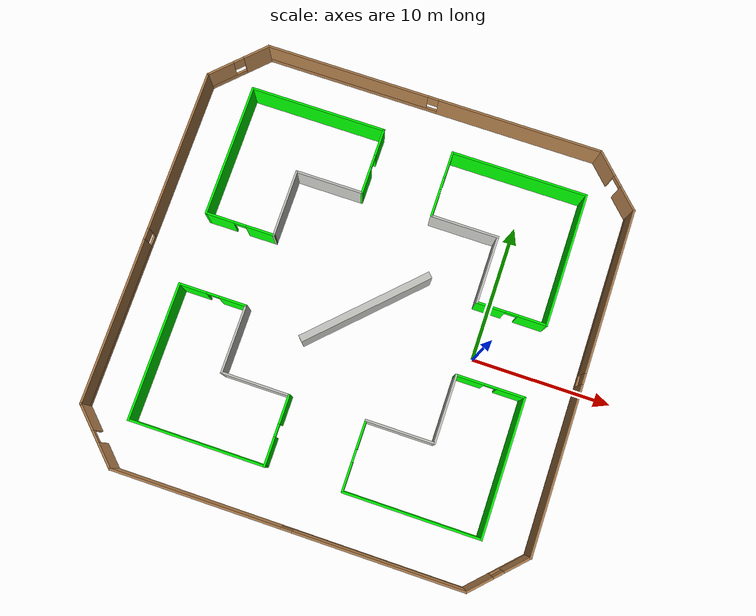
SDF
<?xml version='1.0'?>
<sdf version='1.6'>
  <model name='slash'>
    <pose frame=''>-8.48991 0.791123 0 0 -0 0</pose>
    <link name='Wall_12'>
      <pose frame=''>-14.1397 14.1397 0 0 -0 -2.35619</pose>
      <visual name='Wall_12_Visual_0'>
        <pose frame=''>-1.44919 0 1.25 0 -0 0</pose>
        <geometry>
          <box>
            <size>2.10162 0.15 2.5</size>
          </box>
        </geometry>
        <material>
          <script>
            <uri>file://media/materials/scripts/gazebo.material</uri>
            <name>Gazebo/Wood</name>
          </script>
          <ambient>1 1 1 1</ambient>
        </material>
        <meta>
          <layer>0</layer>
        </meta>
      </visual>
      <collision name='Wall_12_Collision_0'>
        <geometry>
          <box>
            <size>2.10162 0.15 2.5</size>
          </box>
        </geometry>
        <pose frame=''>-1.44919 0 1.25 0 -0 0</pose>
      </collision>
      <visual name='Wall_12_Visual_1'>
        <pose frame=''>1.05081 0 0.25 0 -0 0</pose>
        <geometry>
          <box>
            <size>2.89838 0.15 0.5</size>
          </box>
        </geometry>
        <material>
          <script>
            <uri>file://media/materials/scripts/gazebo.material</uri>
            <name>Gazebo/Wood</name>
          </script>
          <ambient>1 1 1 1</ambient>
        </material>
        <meta>
          <layer>0</layer>
        </meta>
      </visual>
      <collision name='Wall_12_Collision_1'>
        <geometry>
          <box>
            <size>2.89838 0.15 0.5</size>
          </box>
        </geometry>
        <pose frame=''>1.05081 0 0.25 0 -0 0</pose>
      </collision>
      <visual name='Wall_12_Visual_2'>
        <pose frame=''>1.45081 0 1.5 0 -0 0</pose>
        <geometry>
          <box>
            <size>2.09838 0.15 2</size>
          </box>
        </geometry>
        <material>
          <script>
            <uri>file://media/materials/scripts/gazebo.material</uri>
            <name>Gazebo/Wood</name>
          </script>
          <ambient>1 1 1 1</ambient>
        </material>
        <meta>
          <layer>0</layer>
        </meta>
      </visual>
      <collision name='Wall_12_Collision_2'>
        <geometry>
          <box>
            <size>2.09838 0.15 2</size>
          </box>
        </geometry>
        <pose frame=''>1.45081 0 1.5 0 -0 0</pose>
      </collision>
      <visual name='Wall_12_Visual_3'>
        <pose frame=''>0.00162 0 1.9 0 -0 0</pose>
        <geometry>
          <box>
            <size>0.8 0.15 1.2</size>
          </box>
        </geometry>
        <material>
          <script>
            <uri>file://media/materials/scripts/gazebo.material</uri>
            <name>Gazebo/Wood</name>
          </script>
          <ambient>1 1 1 1</ambient>
        </material>
        <meta>
          <layer>0</layer>
        </meta>
      </visual>
      <collision name='Wall_12_Collision_3'>
        <geometry>
          <box>
            <size>0.8 0.15 1.2</size>
          </box>
        </geometry>
        <pose frame=''>0.00162 0 1.9 0 -0 0</pose>
      </collision>
    </link>
    <link name='Wall_13'>
      <pose frame=''>-15.8545 1e-06 0 0 -0 -1.5708</pose>
      <visual name='Wall_13_Visual_0'>
        <pose frame=''>-6.46426 0 1.25 0 -0 0</pose>
        <geometry>
          <box>
            <size>12.0715 0.15 2.5</size>
          </box>
        </geometry>
        <material>
          <script>
            <uri>file://media/materials/scripts/gazebo.material</uri>
            <name>Gazebo/Wood</name>
          </script>
          <ambient>1 1 1 1</ambient>
        </material>
        <meta>
          <layer>0</layer>
        </meta>
      </visual>
      <collision name='Wall_13_Collision_0'>
        <geometry>
          <box>
            <size>12.0715 0.15 2.5</size>
          </box>
        </geometry>
        <pose frame=''>-6.46426 0 1.25 0 -0 0</pose>
      </collision>
      <visual name='Wall_13_Visual_1'>
        <pose frame=''>6.03574 0 0.25 0 -0 0</pose>
        <geometry>
          <box>
            <size>12.9285 0.15 0.5</size>
          </box>
        </geometry>
        <material>
          <script>
            <uri>file://media/materials/scripts/gazebo.material</uri>
            <name>Gazebo/Wood</name>
          </script>
          <ambient>1 1 1 1</ambient>
        </material>
        <meta>
          <layer>0</layer>
        </meta>
      </visual>
      <collision name='Wall_13_Collision_1'>
        <geometry>
          <box>
            <size>12.9285 0.15 0.5</size>
          </box>
        </geometry>
        <pose frame=''>6.03574 0 0.25 0 -0 0</pose>
      </collision>
      <visual name='Wall_13_Visual_2'>
        <pose frame=''>6.43574 0 1.5 0 -0 0</pose>
        <geometry>
          <box>
            <size>12.1285 0.15 2</size>
          </box>
        </geometry>
        <material>
          <script>
            <uri>file://media/materials/scripts/gazebo.material</uri>
            <name>Gazebo/Wood</name>
          </script>
          <ambient>1 1 1 1</ambient>
        </material>
        <meta>
          <layer>0</layer>
        </meta>
      </visual>
      <collision name='Wall_13_Collision_2'>
        <geometry>
          <box>
            <size>12.1285 0.15 2</size>
          </box>
        </geometry>
        <pose frame=''>6.43574 0 1.5 0 -0 0</pose>
      </collision>
      <visual name='Wall_13_Visual_3'>
        <pose frame=''>-0.02852 0 1.9 0 -0 0</pose>
        <geometry>
          <box>
            <size>0.8 0.15 1.2</size>
          </box>
        </geometry>
        <material>
          <script>
            <uri>file://media/materials/scripts/gazebo.material</uri>
            <name>Gazebo/Wood</name>
          </script>
          <ambient>1 1 1 1</ambient>
        </material>
        <meta>
          <layer>0</layer>
        </meta>
      </visual>
      <collision name='Wall_13_Collision_3'>
        <geometry>
          <box>
            <size>0.8 0.15 1.2</size>
          </box>
        </geometry>
        <pose frame=''>-0.02852 0 1.9 0 -0 0</pose>
      </collision>
    </link>
    <link name='Wall_14'>
      <pose frame=''>-14.1397 -14.1397 0 0 -0 -0.785398</pose>
      <visual name='Wall_14_Visual_0'>
        <pose frame=''>-1.4639 0 1.25 0 -0 0</pose>
        <geometry>
          <box>
            <size>2.07221 0.15 2.5</size>
          </box>
        </geometry>
        <material>
          <script>
            <uri>file://media/materials/scripts/gazebo.material</uri>
            <name>Gazebo/Wood</name>
          </script>
          <ambient>1 1 1 1</ambient>
        </material>
        <meta>
          <layer>0</layer>
        </meta>
      </visual>
      <collision name='Wall_14_Collision_0'>
        <geometry>
          <box>
            <size>2.07221 0.15 2.5</size>
          </box>
        </geometry>
        <pose frame=''>-1.4639 0 1.25 0 -0 0</pose>
      </collision>
      <visual name='Wall_14_Visual_1'>
        <pose frame=''>1.4861 0 1.25 0 -0 0</pose>
        <geometry>
          <box>
            <size>2.02779 0.15 2.5</size>
          </box>
        </geometry>
        <material>
          <script>
            <uri>file://media/materials/scripts/gazebo.material</uri>
            <name>Gazebo/Wood</name>
          </script>
          <ambient>1 1 1 1</ambient>
        </material>
        <meta>
          <layer>0</layer>
        </meta>
      </visual>
      <collision name='Wall_14_Collision_1'>
        <geometry>
          <box>
            <size>2.02779 0.15 2.5</size>
          </box>
        </geometry>
        <pose frame=''>1.4861 0 1.25 0 -0 0</pose>
      </collision>
      <visual name='Wall_14_Visual_2'>
        <pose frame=''>0.022208 0 2.25 0 -0 0</pose>
        <geometry>
          <box>
            <size>0.9 0.15 0.5</size>
          </box>
        </geometry>
        <material>
          <script>
            <uri>file://media/materials/scripts/gazebo.material</uri>
            <name>Gazebo/Wood</name>
          </script>
          <ambient>1 1 1 1</ambient>
        </material>
        <meta>
          <layer>0</layer>
        </meta>
      </visual>
      <collision name='Wall_14_Collision_2'>
        <geometry>
          <box>
            <size>0.9 0.15 0.5</size>
          </box>
        </geometry>
        <pose frame=''>0.022208 0 2.25 0 -0 0</pose>
      </collision>
    </link>
    <link name='Wall_24'>
      <collision name='Wall_24_Collision'>
        <geometry>
          <box>
            <size>10 0.15 2.5</size>
          </box>
        </geometry>
        <pose frame=''>0 0 1.25 0 -0 0</pose>
      </collision>
      <visual name='Wall_24_Visual'>
        <pose frame=''>0 0 1.25 0 -0 0</pose>
        <geometry>
          <box>
            <size>10 0.15 2.5</size>
          </box>
        </geometry>
        <material>
          <script>
            <uri>file://media/materials/scripts/gazebo.material</uri>
            <name>Gazebo/Grey</name>
          </script>
          <ambient>0 1 0 1</ambient>
        </material>
        <meta>
          <layer>0</layer>
        </meta>
      </visual>
      <pose frame=''>-7.50657 12.4595 0 0 -0 0</pose>
    </link>
    <link name='Wall_26'>
      <collision name='Wall_26_Collision'>
        <geometry>
          <box>
            <size>10 0.15 2.5</size>
          </box>
        </geometry>
        <pose frame=''>0 0 1.25 0 -0 0</pose>
      </collision>
      <visual name='Wall_26_Visual'>
        <pose frame=''>0 0 1.25 0 -0 0</pose>
        <geometry>
          <box>
            <size>10 0.15 2.5</size>
          </box>
        </geometry>
        <material>
          <script>
            <uri>file://media/materials/scripts/gazebo.material</uri>
            <name>Gazebo/Grey</name>
          </script>
          <ambient>0 1 0 1</ambient>
        </material>
        <meta>
          <layer>0</layer>
        </meta>
      </visual>
      <pose frame=''>7.47519 12.4293 0 0 -0 3.14159</pose>
    </link>
    <link name='Wall_27'>
      <pose frame=''>2.55019 10.0043 0 0 -0 -1.5708</pose>
      <visual name='Wall_27_Visual_0'>
        <pose frame=''>-1.49279 0 1.25 0 -0 0</pose>
        <geometry>
          <box>
            <size>2.01441 0.15 2.5</size>
          </box>
        </geometry>
        <material>
          <script>
            <uri>file://media/materials/scripts/gazebo.material</uri>
            <name>Gazebo/Grey</name>
          </script>
          <ambient>0 1 0 1</ambient>
        </material>
        <meta>
          <layer>0</layer>
        </meta>
      </visual>
      <collision name='Wall_27_Collision_0'>
        <geometry>
          <box>
            <size>2.01441 0.15 2.5</size>
          </box>
        </geometry>
        <pose frame=''>-1.49279 0 1.25 0 -0 0</pose>
      </collision>
      <visual name='Wall_27_Visual_1'>
        <pose frame=''>1.45721 0 1.25 0 -0 0</pose>
        <geometry>
          <box>
            <size>2.08559 0.15 2.5</size>
          </box>
        </geometry>
        <material>
          <script>
            <uri>file://media/materials/scripts/gazebo.material</uri>
            <name>Gazebo/Grey</name>
          </script>
          <ambient>0 1 0 1</ambient>
        </material>
        <meta>
          <layer>0</layer>
        </meta>
      </visual>
      <collision name='Wall_27_Collision_1'>
        <geometry>
          <box>
            <size>2.08559 0.15 2.5</size>
          </box>
        </geometry>
        <pose frame=''>1.45721 0 1.25 0 -0 0</pose>
      </collision>
      <visual name='Wall_27_Visual_2'>
        <pose frame=''>-0.035586 0 2.25 0 -0 0</pose>
        <geometry>
          <box>
            <size>0.9 0.15 0.5</size>
          </box>
        </geometry>
        <material>
          <script>
            <uri>file://media/materials/scripts/gazebo.material</uri>
            <name>Gazebo/Grey</name>
          </script>
          <ambient>0 1 0 1</ambient>
        </material>
        <meta>
          <layer>0</layer>
        </meta>
      </visual>
      <collision name='Wall_27_Collision_2'>
        <geometry>
          <box>
            <size>0.9 0.15 0.5</size>
          </box>
        </geometry>
        <pose frame=''>-0.035586 0 2.25 0 -0 0</pose>
      </collision>
    </link>
    <link name='Wall_28'>
      <collision name='Wall_28_Collision'>
        <geometry>
          <box>
            <size>5 0.15 2.5</size>
          </box>
        </geometry>
        <pose frame=''>0 0 1.25 0 -0 0</pose>
      </collision>
      <visual name='Wall_28_Visual'>
        <pose frame=''>0 0 1.25 0 -0 0</pose>
        <geometry>
          <box>
            <size>5 0.15 2.5</size>
          </box>
        </geometry>
        <material>
          <script>
            <uri>file://media/materials/scripts/gazebo.material</uri>
            <name>Gazebo/CeilingTiled</name>
          </script>
          <ambient>0.972549 0.458824 0.737255 1</ambient>
        </material>
        <meta>
          <layer>0</layer>
        </meta>
      </visual>
      <pose frame=''>4.97519 7.57928 0 0 -0 0</pose>
    </link>
    <link name='Wall_3'>
      <pose frame=''>0.030248 -15.8545 0 0 -0 0</pose>
      <visual name='Wall_3_Visual_0'>
        <pose frame=''>-6.46541 0 1.25 0 -0 0</pose>
        <geometry>
          <box>
            <size>12.1297 0.15 2.5</size>
          </box>
        </geometry>
        <material>
          <script>
            <uri>file://media/materials/scripts/gazebo.material</uri>
            <name>Gazebo/Wood</name>
          </script>
          <ambient>1 1 1 1</ambient>
        </material>
        <meta>
          <layer>0</layer>
        </meta>
      </visual>
      <collision name='Wall_3_Collision_0'>
        <geometry>
          <box>
            <size>12.1297 0.15 2.5</size>
          </box>
        </geometry>
        <pose frame=''>-6.46541 0 1.25 0 -0 0</pose>
      </collision>
      <visual name='Wall_3_Visual_1'>
        <pose frame=''>6.06484 0 0.25 0 -0 0</pose>
        <geometry>
          <box>
            <size>12.9308 0.15 0.5</size>
          </box>
        </geometry>
        <material>
          <script>
            <uri>file://media/materials/scripts/gazebo.material</uri>
            <name>Gazebo/Wood</name>
          </script>
          <ambient>1 1 1 1</ambient>
        </material>
        <meta>
          <layer>0</layer>
        </meta>
      </visual>
      <collision name='Wall_3_Collision_1'>
        <geometry>
          <box>
            <size>12.9308 0.15 0.5</size>
          </box>
        </geometry>
        <pose frame=''>6.06484 0 0.25 0 -0 0</pose>
      </collision>
      <visual name='Wall_3_Visual_2'>
        <pose frame=''>6.46484 0 1.5 0 -0 0</pose>
        <geometry>
          <box>
            <size>12.1308 0.15 2</size>
          </box>
        </geometry>
        <material>
          <script>
            <uri>file://media/materials/scripts/gazebo.material</uri>
            <name>Gazebo/Wood</name>
          </script>
          <ambient>1 1 1 1</ambient>
        </material>
        <meta>
          <layer>0</layer>
        </meta>
      </visual>
      <collision name='Wall_3_Collision_2'>
        <geometry>
          <box>
            <size>12.1308 0.15 2</size>
          </box>
        </geometry>
        <pose frame=''>6.46484 0 1.5 0 -0 0</pose>
      </collision>
      <visual name='Wall_3_Visual_3'>
        <pose frame=''>-0.000566 0 1.9 0 -0 0</pose>
        <geometry>
          <box>
            <size>0.8 0.15 1.2</size>
          </box>
        </geometry>
        <material>
          <script>
            <uri>file://media/materials/scripts/gazebo.material</uri>
            <name>Gazebo/Wood</name>
          </script>
          <ambient>1 1 1 1</ambient>
        </material>
        <meta>
          <layer>0</layer>
        </meta>
      </visual>
      <collision name='Wall_3_Collision_3'>
        <geometry>
          <box>
            <size>0.8 0.15 1.2</size>
          </box>
        </geometry>
        <pose frame=''>-0.000566 0 1.9 0 -0 0</pose>
      </collision>
    </link>
    <link name='Wall_32'>
      <collision name='Wall_32_Collision'>
        <geometry>
          <box>
            <size>5 0.15 2.5</size>
          </box>
        </geometry>
        <pose frame=''>0 0 1.25 0 -0 0</pose>
      </collision>
      <visual name='Wall_32_Visual'>
        <pose frame=''>0 0 1.25 0 -0 0</pose>
        <geometry>
          <box>
            <size>5 0.15 2.5</size>
          </box>
        </geometry>
        <material>
          <script>
            <uri>file://media/materials/scripts/gazebo.material</uri>
            <name>Gazebo/CeilingTiled</name>
          </script>
          <ambient>0.972549 0.458824 0.737255 1</ambient>
        </material>
        <meta>
          <layer>0</layer>
        </meta>
      </visual>
      <pose frame=''>7.40005 5.15408 0 0 -0 -1.57086</pose>
    </link>
    <link name='Wall_33'>
      <pose frame=''>9.89991 2.72888 0 0 -0 0</pose>
      <visual name='Wall_33_Visual_0'>
        <pose frame=''>-1.51755 0 1.25 0 -0 0</pose>
        <geometry>
          <box>
            <size>2.11489 0.15 2.5</size>
          </box>
        </geometry>
        <material>
          <script>
            <uri>file://media/materials/scripts/gazebo.material</uri>
            <name>Gazebo/Grey</name>
          </script>
          <ambient>0 1 0 1</ambient>
        </material>
        <meta>
          <layer>0</layer>
        </meta>
      </visual>
      <collision name='Wall_33_Collision_0'>
        <geometry>
          <box>
            <size>2.11489 0.15 2.5</size>
          </box>
        </geometry>
        <pose frame=''>-1.51755 0 1.25 0 -0 0</pose>
      </collision>
      <visual name='Wall_33_Visual_1'>
        <pose frame=''>1.50744 0 1.25 0 -0 0</pose>
        <geometry>
          <box>
            <size>2.13511 0.15 2.5</size>
          </box>
        </geometry>
        <material>
          <script>
            <uri>file://media/materials/scripts/gazebo.material</uri>
            <name>Gazebo/Grey</name>
          </script>
          <ambient>0 1 0 1</ambient>
        </material>
        <meta>
          <layer>0</layer>
        </meta>
      </visual>
      <collision name='Wall_33_Collision_1'>
        <geometry>
          <box>
            <size>2.13511 0.15 2.5</size>
          </box>
        </geometry>
        <pose frame=''>1.50744 0 1.25 0 -0 0</pose>
      </collision>
      <visual name='Wall_33_Visual_2'>
        <pose frame=''>-0.01011 0 2.25 0 -0 0</pose>
        <geometry>
          <box>
            <size>0.9 0.15 0.5</size>
          </box>
        </geometry>
        <material>
          <script>
            <uri>file://media/materials/scripts/gazebo.material</uri>
            <name>Gazebo/Grey</name>
          </script>
          <ambient>0 1 0 1</ambient>
        </material>
        <meta>
          <layer>0</layer>
        </meta>
      </visual>
      <collision name='Wall_33_Collision_2'>
        <geometry>
          <box>
            <size>0.9 0.15 0.5</size>
          </box>
        </geometry>
        <pose frame=''>-0.01011 0 2.25 0 -0 0</pose>
      </collision>
    </link>
    <link name='Wall_36'>
      <collision name='Wall_36_Collision'>
        <geometry>
          <box>
            <size>9.8504 0.15 2.5</size>
          </box>
        </geometry>
        <pose frame=''>0 0 1.25 0 -0 0</pose>
      </collision>
      <visual name='Wall_36_Visual'>
        <pose frame=''>0 0 1.25 0 -0 0</pose>
        <geometry>
          <box>
            <size>9.8504 0.15 2.5</size>
          </box>
        </geometry>
        <material>
          <script>
            <uri>file://media/materials/scripts/gazebo.material</uri>
            <name>Gazebo/Grey</name>
          </script>
          <ambient>0 1 0 1</ambient>
        </material>
        <meta>
          <layer>0</layer>
        </meta>
      </visual>
      <pose frame=''>12.4 7.57908 0 0 -0 1.57077</pose>
    </link>
    <link name='Wall_38'>
      <pose frame=''>-2.58157 10.0345 0 0 -0 -1.5708</pose>
      <visual name='Wall_38_Visual_0'>
        <pose frame=''>-1.47767 0 1.25 0 -0 0</pose>
        <geometry>
          <box>
            <size>2.04466 0.15 2.5</size>
          </box>
        </geometry>
        <material>
          <script>
            <uri>file://media/materials/scripts/gazebo.material</uri>
            <name>Gazebo/Grey</name>
          </script>
          <ambient>0 1 0 1</ambient>
        </material>
        <meta>
          <layer>0</layer>
        </meta>
      </visual>
      <collision name='Wall_38_Collision_0'>
        <geometry>
          <box>
            <size>2.04466 0.15 2.5</size>
          </box>
        </geometry>
        <pose frame=''>-1.47767 0 1.25 0 -0 0</pose>
      </collision>
      <visual name='Wall_38_Visual_1'>
        <pose frame=''>1.47233 0 1.25 0 -0 0</pose>
        <geometry>
          <box>
            <size>2.05534 0.15 2.5</size>
          </box>
        </geometry>
        <material>
          <script>
            <uri>file://media/materials/scripts/gazebo.material</uri>
            <name>Gazebo/Grey</name>
          </script>
          <ambient>0 1 0 1</ambient>
        </material>
        <meta>
          <layer>0</layer>
        </meta>
      </visual>
      <collision name='Wall_38_Collision_1'>
        <geometry>
          <box>
            <size>2.05534 0.15 2.5</size>
          </box>
        </geometry>
        <pose frame=''>1.47233 0 1.25 0 -0 0</pose>
      </collision>
      <visual name='Wall_38_Visual_2'>
        <pose frame=''>-0.005341 0 2.25 0 -0 0</pose>
        <geometry>
          <box>
            <size>0.9 0.15 0.5</size>
          </box>
        </geometry>
        <material>
          <script>
            <uri>file://media/materials/scripts/gazebo.material</uri>
            <name>Gazebo/Grey</name>
          </script>
          <ambient>0 1 0 1</ambient>
        </material>
        <meta>
          <layer>0</layer>
        </meta>
      </visual>
      <collision name='Wall_38_Collision_2'>
        <geometry>
          <box>
            <size>0.9 0.15 0.5</size>
          </box>
        </geometry>
        <pose frame=''>-0.005341 0 2.25 0 -0 0</pose>
      </collision>
    </link>
    <link name='Wall_39'>
      <collision name='Wall_39_Collision'>
        <geometry>
          <box>
            <size>5 0.15 2.5</size>
          </box>
        </geometry>
        <pose frame=''>0 0 1.25 0 -0 0</pose>
      </collision>
      <visual name='Wall_39_Visual'>
        <pose frame=''>0 0 1.25 0 -0 0</pose>
        <geometry>
          <box>
            <size>5 0.15 2.5</size>
          </box>
        </geometry>
        <material>
          <script>
            <uri>file://media/materials/scripts/gazebo.material</uri>
            <name>Gazebo/CeilingTiled</name>
          </script>
          <ambient>0.972549 0.458824 0.737255 1</ambient>
        </material>
        <meta>
          <layer>0</layer>
        </meta>
      </visual>
      <pose frame=''>-5.00657 7.60952 0 0 -0 3.14159</pose>
    </link>
    <link name='Wall_4'>
      <pose frame=''>14.17 -14.1397 0 0 -0 0.794296</pose>
      <visual name='Wall_4_Visual_0'>
        <pose frame=''>-1.44007 0 1.25 0 -0 0</pose>
        <geometry>
          <box>
            <size>2.07727 0.15 2.5</size>
          </box>
        </geometry>
        <material>
          <script>
            <uri>file://media/materials/scripts/gazebo.material</uri>
            <name>Gazebo/Wood</name>
          </script>
          <ambient>1 1 1 1</ambient>
        </material>
        <meta>
          <layer>0</layer>
        </meta>
      </visual>
      <collision name='Wall_4_Collision_0'>
        <geometry>
          <box>
            <size>2.07727 0.15 2.5</size>
          </box>
        </geometry>
        <pose frame=''>-1.44007 0 1.25 0 -0 0</pose>
      </collision>
      <visual name='Wall_4_Visual_1'>
        <pose frame=''>1.03863 0 0.25 0 -0 0</pose>
        <geometry>
          <box>
            <size>2.88015 0.15 0.5</size>
          </box>
        </geometry>
        <material>
          <script>
            <uri>file://media/materials/scripts/gazebo.material</uri>
            <name>Gazebo/Wood</name>
          </script>
          <ambient>1 1 1 1</ambient>
        </material>
        <meta>
          <layer>0</layer>
        </meta>
      </visual>
      <collision name='Wall_4_Collision_1'>
        <geometry>
          <box>
            <size>2.88015 0.15 0.5</size>
          </box>
        </geometry>
        <pose frame=''>1.03863 0 0.25 0 -0 0</pose>
      </collision>
      <visual name='Wall_4_Visual_2'>
        <pose frame=''>1.43863 0 1.5 0 -0 0</pose>
        <geometry>
          <box>
            <size>2.08015 0.15 2</size>
          </box>
        </geometry>
        <material>
          <script>
            <uri>file://media/materials/scripts/gazebo.material</uri>
            <name>Gazebo/Wood</name>
          </script>
          <ambient>1 1 1 1</ambient>
        </material>
        <meta>
          <layer>0</layer>
        </meta>
      </visual>
      <collision name='Wall_4_Collision_2'>
        <geometry>
          <box>
            <size>2.08015 0.15 2</size>
          </box>
        </geometry>
        <pose frame=''>1.43863 0 1.5 0 -0 0</pose>
      </collision>
      <visual name='Wall_4_Visual_3'>
        <pose frame=''>-0.00144 0 1.9 0 -0 0</pose>
        <geometry>
          <box>
            <size>0.8 0.15 1.2</size>
          </box>
        </geometry>
        <material>
          <script>
            <uri>file://media/materials/scripts/gazebo.material</uri>
            <name>Gazebo/Wood</name>
          </script>
          <ambient>1 1 1 1</ambient>
        </material>
        <meta>
          <layer>0</layer>
        </meta>
      </visual>
      <collision name='Wall_4_Collision_3'>
        <geometry>
          <box>
            <size>0.8 0.15 1.2</size>
          </box>
        </geometry>
        <pose frame=''>-0.00144 0 1.9 0 -0 0</pose>
      </collision>
    </link>
    <link name='Wall_40'>
      <collision name='Wall_40_Collision'>
        <geometry>
          <box>
            <size>5 0.15 2.5</size>
          </box>
        </geometry>
        <pose frame=''>0 0 1.25 0 -0 0</pose>
      </collision>
      <visual name='Wall_40_Visual'>
        <pose frame=''>0 0 1.25 0 -0 0</pose>
        <geometry>
          <box>
            <size>5 0.15 2.5</size>
          </box>
        </geometry>
        <material>
          <script>
            <uri>file://media/materials/scripts/gazebo.material</uri>
            <name>Gazebo/CeilingTiled</name>
          </script>
          <ambient>0.972549 0.458824 0.737255 1</ambient>
        </material>
        <meta>
          <layer>0</layer>
        </meta>
      </visual>
      <pose frame=''>-7.43133 5.1847 0 0 -0 -1.5707</pose>
    </link>
    <link name='Wall_41'>
      <pose frame=''>-9.93109 2.75988 0 0 -0 3.14159</pose>
      <visual name='Wall_41_Visual_0'>
        <pose frame=''>-1.51746 0 1.25 0 -0 0</pose>
        <geometry>
          <box>
            <size>2.11507 0.15 2.5</size>
          </box>
        </geometry>
        <material>
          <script>
            <uri>file://media/materials/scripts/gazebo.material</uri>
            <name>Gazebo/Grey</name>
          </script>
          <ambient>0 1 0 1</ambient>
        </material>
        <meta>
          <layer>0</layer>
        </meta>
      </visual>
      <collision name='Wall_41_Collision_0'>
        <geometry>
          <box>
            <size>2.11507 0.15 2.5</size>
          </box>
        </geometry>
        <pose frame=''>-1.51746 0 1.25 0 -0 0</pose>
      </collision>
      <visual name='Wall_41_Visual_1'>
        <pose frame=''>1.50754 0 1.25 0 -0 0</pose>
        <geometry>
          <box>
            <size>2.13493 0.15 2.5</size>
          </box>
        </geometry>
        <material>
          <script>
            <uri>file://media/materials/scripts/gazebo.material</uri>
            <name>Gazebo/Grey</name>
          </script>
          <ambient>0 1 0 1</ambient>
        </material>
        <meta>
          <layer>0</layer>
        </meta>
      </visual>
      <collision name='Wall_41_Collision_1'>
        <geometry>
          <box>
            <size>2.13493 0.15 2.5</size>
          </box>
        </geometry>
        <pose frame=''>1.50754 0 1.25 0 -0 0</pose>
      </collision>
      <visual name='Wall_41_Visual_2'>
        <pose frame=''>-0.009926 0 2.25 0 -0 0</pose>
        <geometry>
          <box>
            <size>0.9 0.15 0.5</size>
          </box>
        </geometry>
        <material>
          <script>
            <uri>file://media/materials/scripts/gazebo.material</uri>
            <name>Gazebo/Grey</name>
          </script>
          <ambient>0 1 0 1</ambient>
        </material>
        <meta>
          <layer>0</layer>
        </meta>
      </visual>
      <collision name='Wall_41_Collision_2'>
        <geometry>
          <box>
            <size>0.9 0.15 0.5</size>
          </box>
        </geometry>
        <pose frame=''>-0.009926 0 2.25 0 -0 0</pose>
      </collision>
    </link>
    <link name='Wall_43'>
      <collision name='Wall_43_Collision'>
        <geometry>
          <box>
            <size>9.84965 0.15 2.5</size>
          </box>
        </geometry>
        <pose frame=''>0 0 1.25 0 -0 0</pose>
      </collision>
      <visual name='Wall_43_Visual'>
        <pose frame=''>0 0 1.25 0 -0 0</pose>
        <geometry>
          <box>
            <size>9.84965 0.15 2.5</size>
          </box>
        </geometry>
        <material>
          <script>
            <uri>file://media/materials/scripts/gazebo.material</uri>
            <name>Gazebo/Grey</name>
          </script>
          <ambient>0 1 0 1</ambient>
        </material>
        <meta>
          <layer>0</layer>
        </meta>
      </visual>
      <pose frame=''>-12.4313 7.6097 0 0 -0 1.57085</pose>
    </link>
    <link name='Wall_45'>
      <collision name='Wall_45_Collision'>
        <geometry>
          <box>
            <size>10 0.15 2.5</size>
          </box>
        </geometry>
        <pose frame=''>0 0 1.25 0 -0 0</pose>
      </collision>
      <visual name='Wall_45_Visual'>
        <pose frame=''>0 0 1.25 0 -0 0</pose>
        <geometry>
          <box>
            <size>10 0.15 2.5</size>
          </box>
        </geometry>
        <material>
          <script>
            <uri>file://media/materials/scripts/gazebo.material</uri>
            <name>Gazebo/Grey</name>
          </script>
          <ambient>0 1 0 1</ambient>
        </material>
        <meta>
          <layer>0</layer>
        </meta>
      </visual>
      <pose frame=''>-12.4316 -7.47748 0 0 -0 1.5708</pose>
    </link>
    <link name='Wall_46'>
      <pose frame=''>-10.0066 -2.55248 0 0 -0 0</pose>
      <visual name='Wall_46_Visual_0'>
        <pose frame=''>-1.46255 0 1.25 0 -0 0</pose>
        <geometry>
          <box>
            <size>2.07491 0.15 2.5</size>
          </box>
        </geometry>
        <material>
          <script>
            <uri>file://media/materials/scripts/gazebo.material</uri>
            <name>Gazebo/Grey</name>
          </script>
          <ambient>0 1 0 1</ambient>
        </material>
        <meta>
          <layer>0</layer>
        </meta>
      </visual>
      <collision name='Wall_46_Collision_0'>
        <geometry>
          <box>
            <size>2.07491 0.15 2.5</size>
          </box>
        </geometry>
        <pose frame=''>-1.46255 0 1.25 0 -0 0</pose>
      </collision>
      <visual name='Wall_46_Visual_1'>
        <pose frame=''>1.48745 0 1.25 0 -0 0</pose>
        <geometry>
          <box>
            <size>2.02509 0.15 2.5</size>
          </box>
        </geometry>
        <material>
          <script>
            <uri>file://media/materials/scripts/gazebo.material</uri>
            <name>Gazebo/Grey</name>
          </script>
          <ambient>0 1 0 1</ambient>
        </material>
        <meta>
          <layer>0</layer>
        </meta>
      </visual>
      <collision name='Wall_46_Collision_1'>
        <geometry>
          <box>
            <size>2.02509 0.15 2.5</size>
          </box>
        </geometry>
        <pose frame=''>1.48745 0 1.25 0 -0 0</pose>
      </collision>
      <visual name='Wall_46_Visual_2'>
        <pose frame=''>0.024906 0 2.25 0 -0 0</pose>
        <geometry>
          <box>
            <size>0.9 0.15 0.5</size>
          </box>
        </geometry>
        <material>
          <script>
            <uri>file://media/materials/scripts/gazebo.material</uri>
            <name>Gazebo/Grey</name>
          </script>
          <ambient>0 1 0 1</ambient>
        </material>
        <meta>
          <layer>0</layer>
        </meta>
      </visual>
      <collision name='Wall_46_Collision_2'>
        <geometry>
          <box>
            <size>0.9 0.15 0.5</size>
          </box>
        </geometry>
        <pose frame=''>0.024906 0 2.25 0 -0 0</pose>
      </collision>
    </link>
    <link name='Wall_47'>
      <collision name='Wall_47_Collision'>
        <geometry>
          <box>
            <size>5 0.15 2.5</size>
          </box>
        </geometry>
        <pose frame=''>0 0 1.25 0 -0 0</pose>
      </collision>
      <visual name='Wall_47_Visual'>
        <pose frame=''>0 0 1.25 0 -0 0</pose>
        <geometry>
          <box>
            <size>5 0.15 2.5</size>
          </box>
        </geometry>
        <material>
          <script>
            <uri>file://media/materials/scripts/gazebo.material</uri>
            <name>Gazebo/CeilingTiled</name>
          </script>
          <ambient>1 0.580392 0.909804 1</ambient>
        </material>
        <meta>
          <layer>0</layer>
        </meta>
      </visual>
      <pose frame=''>-7.58157 -4.97748 0 0 -0 -1.5708</pose>
    </link>
    <link name='Wall_48'>
      <collision name='Wall_48_Collision'>
        <geometry>
          <box>
            <size>5 0.15 2.5</size>
          </box>
        </geometry>
        <pose frame=''>0 0 1.25 0 -0 0</pose>
      </collision>
      <visual name='Wall_48_Visual'>
        <pose frame=''>0 0 1.25 0 -0 0</pose>
        <geometry>
          <box>
            <size>5 0.15 2.5</size>
          </box>
        </geometry>
        <material>
          <script>
            <uri>file://media/materials/scripts/gazebo.material</uri>
            <name>Gazebo/CeilingTiled</name>
          </script>
          <ambient>0.972549 0.458824 0.737255 1</ambient>
        </material>
        <meta>
          <layer>0</layer>
        </meta>
      </visual>
      <pose frame=''>-5.15633 -7.4023 0 0 -0 7.4e-05</pose>
    </link>
    <link name='Wall_49'>
      <pose frame=''>-2.73109 -9.90212 0 0 -0 -1.5708</pose>
      <visual name='Wall_49_Visual_0'>
        <pose frame=''>-1.51752 0 1.25 0 -0 0</pose>
        <geometry>
          <box>
            <size>2.11496 0.15 2.5</size>
          </box>
        </geometry>
        <material>
          <script>
            <uri>file://media/materials/scripts/gazebo.material</uri>
            <name>Gazebo/Grey</name>
          </script>
          <ambient>0 1 0 1</ambient>
        </material>
        <meta>
          <layer>0</layer>
        </meta>
      </visual>
      <collision name='Wall_49_Collision_0'>
        <geometry>
          <box>
            <size>2.11496 0.15 2.5</size>
          </box>
        </geometry>
        <pose frame=''>-1.51752 0 1.25 0 -0 0</pose>
      </collision>
      <visual name='Wall_49_Visual_1'>
        <pose frame=''>1.50748 0 1.25 0 -0 0</pose>
        <geometry>
          <box>
            <size>2.13504 0.15 2.5</size>
          </box>
        </geometry>
        <material>
          <script>
            <uri>file://media/materials/scripts/gazebo.material</uri>
            <name>Gazebo/Grey</name>
          </script>
          <ambient>0 1 0 1</ambient>
        </material>
        <meta>
          <layer>0</layer>
        </meta>
      </visual>
      <collision name='Wall_49_Collision_1'>
        <geometry>
          <box>
            <size>2.13504 0.15 2.5</size>
          </box>
        </geometry>
        <pose frame=''>1.50748 0 1.25 0 -0 0</pose>
      </collision>
      <visual name='Wall_49_Visual_2'>
        <pose frame=''>-0.010039 0 2.25 0 -0 0</pose>
        <geometry>
          <box>
            <size>0.9 0.15 0.5</size>
          </box>
        </geometry>
        <material>
          <script>
            <uri>file://media/materials/scripts/gazebo.material</uri>
            <name>Gazebo/Grey</name>
          </script>
          <ambient>0 1 0 1</ambient>
        </material>
        <meta>
          <layer>0</layer>
        </meta>
      </visual>
      <collision name='Wall_49_Collision_2'>
        <geometry>
          <box>
            <size>0.9 0.15 0.5</size>
          </box>
        </geometry>
        <pose frame=''>-0.010039 0 2.25 0 -0 0</pose>
      </collision>
    </link>
    <link name='Wall_5'>
      <pose frame=''>15.8545 1e-06 0 0 -0 1.5708</pose>
      <visual name='Wall_5_Visual_0'>
        <pose frame=''>-6.45086 0 1.25 0 -0 0</pose>
        <geometry>
          <box>
            <size>12.0983 0.15 2.5</size>
          </box>
        </geometry>
        <material>
          <script>
            <uri>file://media/materials/scripts/gazebo.material</uri>
            <name>Gazebo/Wood</name>
          </script>
          <ambient>1 1 1 1</ambient>
        </material>
        <meta>
          <layer>0</layer>
        </meta>
      </visual>
      <collision name='Wall_5_Collision_0'>
        <geometry>
          <box>
            <size>12.0983 0.15 2.5</size>
          </box>
        </geometry>
        <pose frame=''>-6.45086 0 1.25 0 -0 0</pose>
      </collision>
      <visual name='Wall_5_Visual_1'>
        <pose frame=''>6.04914 0 0.25 0 -0 0</pose>
        <geometry>
          <box>
            <size>12.9017 0.15 0.5</size>
          </box>
        </geometry>
        <material>
          <script>
            <uri>file://media/materials/scripts/gazebo.material</uri>
            <name>Gazebo/Wood</name>
          </script>
          <ambient>1 1 1 1</ambient>
        </material>
        <meta>
          <layer>0</layer>
        </meta>
      </visual>
      <collision name='Wall_5_Collision_1'>
        <geometry>
          <box>
            <size>12.9017 0.15 0.5</size>
          </box>
        </geometry>
        <pose frame=''>6.04914 0 0.25 0 -0 0</pose>
      </collision>
      <visual name='Wall_5_Visual_2'>
        <pose frame=''>6.44914 0 1.5 0 -0 0</pose>
        <geometry>
          <box>
            <size>12.1017 0.15 2</size>
          </box>
        </geometry>
        <material>
          <script>
            <uri>file://media/materials/scripts/gazebo.material</uri>
            <name>Gazebo/Wood</name>
          </script>
          <ambient>1 1 1 1</ambient>
        </material>
        <meta>
          <layer>0</layer>
        </meta>
      </visual>
      <collision name='Wall_5_Collision_2'>
        <geometry>
          <box>
            <size>12.1017 0.15 2</size>
          </box>
        </geometry>
        <pose frame=''>6.44914 0 1.5 0 -0 0</pose>
      </collision>
      <visual name='Wall_5_Visual_3'>
        <pose frame=''>-0.001726 0 1.9 0 -0 0</pose>
        <geometry>
          <box>
            <size>0.8 0.15 1.2</size>
          </box>
        </geometry>
        <material>
          <script>
            <uri>file://media/materials/scripts/gazebo.material</uri>
            <name>Gazebo/Wood</name>
          </script>
          <ambient>1 1 1 1</ambient>
        </material>
        <meta>
          <layer>0</layer>
        </meta>
      </visual>
      <collision name='Wall_5_Collision_3'>
        <geometry>
          <box>
            <size>0.8 0.15 1.2</size>
          </box>
        </geometry>
        <pose frame=''>-0.001726 0 1.9 0 -0 0</pose>
      </collision>
    </link>
    <link name='Wall_51'>
      <collision name='Wall_51_Collision'>
        <geometry>
          <box>
            <size>9.85047 0.15 2.5</size>
          </box>
        </geometry>
        <pose frame=''>0 0 1.25 0 -0 0</pose>
      </collision>
      <visual name='Wall_51_Visual'>
        <pose frame=''>0 0 1.25 0 -0 0</pose>
        <geometry>
          <box>
            <size>9.85047 0.15 2.5</size>
          </box>
        </geometry>
        <material>
          <script>
            <uri>file://media/materials/scripts/gazebo.material</uri>
            <name>Gazebo/Grey</name>
          </script>
          <ambient>0 1 0 1</ambient>
        </material>
        <meta>
          <layer>0</layer>
        </meta>
      </visual>
      <pose frame=''>-7.58133 -12.4023 0 0 -0 -3.14156</pose>
    </link>
    <link name='Wall_54'>
      <collision name='Wall_54_Collision'>
        <geometry>
          <box>
            <size>10 0.15 2.5</size>
          </box>
        </geometry>
        <pose frame=''>0 0 1.25 0 -0 0</pose>
      </collision>
      <visual name='Wall_54_Visual'>
        <pose frame=''>0 0 1.25 0 -0 0</pose>
        <geometry>
          <box>
            <size>10 0.15 2.5</size>
          </box>
        </geometry>
        <material>
          <script>
            <uri>file://media/materials/scripts/gazebo.material</uri>
            <name>Gazebo/Grey</name>
          </script>
          <ambient>0 1 0 1</ambient>
        </material>
        <meta>
          <layer>0</layer>
        </meta>
      </visual>
      <pose frame=''>12.4304 -7.41699 0 0 -0 1.5708</pose>
    </link>
    <link name='Wall_55'>
      <pose frame=''>10.0054 -2.49199 0 0 -0 3.14159</pose>
      <visual name='Wall_55_Visual_0'>
        <pose frame=''>-1.47767 0 1.25 0 -0 0</pose>
        <geometry>
          <box>
            <size>2.04466 0.15 2.5</size>
          </box>
        </geometry>
        <material>
          <script>
            <uri>file://media/materials/scripts/gazebo.material</uri>
            <name>Gazebo/Grey</name>
          </script>
          <ambient>0 1 0 1</ambient>
        </material>
        <meta>
          <layer>0</layer>
        </meta>
      </visual>
      <collision name='Wall_55_Collision_0'>
        <geometry>
          <box>
            <size>2.04466 0.15 2.5</size>
          </box>
        </geometry>
        <pose frame=''>-1.47767 0 1.25 0 -0 0</pose>
      </collision>
      <visual name='Wall_55_Visual_1'>
        <pose frame=''>1.47233 0 1.25 0 -0 0</pose>
        <geometry>
          <box>
            <size>2.05534 0.15 2.5</size>
          </box>
        </geometry>
        <material>
          <script>
            <uri>file://media/materials/scripts/gazebo.material</uri>
            <name>Gazebo/Grey</name>
          </script>
          <ambient>0 1 0 1</ambient>
        </material>
        <meta>
          <layer>0</layer>
        </meta>
      </visual>
      <collision name='Wall_55_Collision_1'>
        <geometry>
          <box>
            <size>2.05534 0.15 2.5</size>
          </box>
        </geometry>
        <pose frame=''>1.47233 0 1.25 0 -0 0</pose>
      </collision>
      <visual name='Wall_55_Visual_2'>
        <pose frame=''>-0.00534 0 2.25 0 -0 0</pose>
        <geometry>
          <box>
            <size>0.9 0.15 0.5</size>
          </box>
        </geometry>
        <material>
          <script>
            <uri>file://media/materials/scripts/gazebo.material</uri>
            <name>Gazebo/Grey</name>
          </script>
          <ambient>0 1 0 1</ambient>
        </material>
        <meta>
          <layer>0</layer>
        </meta>
      </visual>
      <collision name='Wall_55_Collision_2'>
        <geometry>
          <box>
            <size>0.9 0.15 0.5</size>
          </box>
        </geometry>
        <pose frame=''>-0.00534 0 2.25 0 -0 0</pose>
      </collision>
    </link>
    <link name='Wall_56'>
      <collision name='Wall_56_Collision'>
        <geometry>
          <box>
            <size>5 0.15 2.5</size>
          </box>
        </geometry>
        <pose frame=''>0 0 1.25 0 -0 0</pose>
      </collision>
      <visual name='Wall_56_Visual'>
        <pose frame=''>0 0 1.25 0 -0 0</pose>
        <geometry>
          <box>
            <size>5 0.15 2.5</size>
          </box>
        </geometry>
        <material>
          <script>
            <uri>file://media/materials/scripts/gazebo.material</uri>
            <name>Gazebo/CeilingTiled</name>
          </script>
          <ambient>0.972549 0.458824 0.737255 1</ambient>
        </material>
        <meta>
          <layer>0</layer>
        </meta>
      </visual>
      <pose frame=''>7.58044 -4.91699 0 0 -0 -1.5708</pose>
    </link>
    <link name='Wall_57'>
      <collision name='Wall_57_Collision'>
        <geometry>
          <box>
            <size>5 0.15 2.5</size>
          </box>
        </geometry>
        <pose frame=''>0 0 1.25 0 -0 0</pose>
      </collision>
      <visual name='Wall_57_Visual'>
        <pose frame=''>0 0 1.25 0 -0 0</pose>
        <geometry>
          <box>
            <size>5 0.15 2.5</size>
          </box>
        </geometry>
        <material>
          <script>
            <uri>file://media/materials/scripts/gazebo.material</uri>
            <name>Gazebo/CeilingTiled</name>
          </script>
          <ambient>0.972549 0.458824 0.737255 1</ambient>
        </material>
        <meta>
          <layer>0</layer>
        </meta>
      </visual>
      <pose frame=''>5.15567 -7.34206 0 0 -0 -3.14156</pose>
    </link>
    <link name='Wall_58'>
      <pose frame=''>2.73091 -9.84212 0 0 -0 -1.5708</pose>
      <visual name='Wall_58_Visual_0'>
        <pose frame=''>-1.51777 0 1.25 0 -0 0</pose>
        <geometry>
          <box>
            <size>2.11447 0.15 2.5</size>
          </box>
        </geometry>
        <material>
          <script>
            <uri>file://media/materials/scripts/gazebo.material</uri>
            <name>Gazebo/Grey</name>
          </script>
          <ambient>0 1 0 1</ambient>
        </material>
        <meta>
          <layer>0</layer>
        </meta>
      </visual>
      <collision name='Wall_58_Collision_0'>
        <geometry>
          <box>
            <size>2.11447 0.15 2.5</size>
          </box>
        </geometry>
        <pose frame=''>-1.51777 0 1.25 0 -0 0</pose>
      </collision>
      <visual name='Wall_58_Visual_1'>
        <pose frame=''>1.50724 0 1.25 0 -0 0</pose>
        <geometry>
          <box>
            <size>2.13553 0.15 2.5</size>
          </box>
        </geometry>
        <material>
          <script>
            <uri>file://media/materials/scripts/gazebo.material</uri>
            <name>Gazebo/Grey</name>
          </script>
          <ambient>0 1 0 1</ambient>
        </material>
        <meta>
          <layer>0</layer>
        </meta>
      </visual>
      <collision name='Wall_58_Collision_1'>
        <geometry>
          <box>
            <size>2.13553 0.15 2.5</size>
          </box>
        </geometry>
        <pose frame=''>1.50724 0 1.25 0 -0 0</pose>
      </collision>
      <visual name='Wall_58_Visual_2'>
        <pose frame=''>-0.01053 0 2.25 0 -0 0</pose>
        <geometry>
          <box>
            <size>0.9 0.15 0.5</size>
          </box>
        </geometry>
        <material>
          <script>
            <uri>file://media/materials/scripts/gazebo.material</uri>
            <name>Gazebo/Grey</name>
          </script>
          <ambient>0 1 0 1</ambient>
        </material>
        <meta>
          <layer>0</layer>
        </meta>
      </visual>
      <collision name='Wall_58_Collision_2'>
        <geometry>
          <box>
            <size>0.9 0.15 0.5</size>
          </box>
        </geometry>
        <pose frame=''>-0.01053 0 2.25 0 -0 0</pose>
      </collision>
    </link>
    <link name='Wall_6'>
      <pose frame=''>14.17 14.1397 0 0 -0 2.3473</pose>
      <visual name='Wall_6_Visual_0'>
        <pose frame=''>-1.47584 0 1.25 0 -0 0</pose>
        <geometry>
          <box>
            <size>2.00573 0.15 2.5</size>
          </box>
        </geometry>
        <material>
          <script>
            <uri>file://media/materials/scripts/gazebo.material</uri>
            <name>Gazebo/Wood</name>
          </script>
          <ambient>1 1 1 1</ambient>
        </material>
        <meta>
          <layer>0</layer>
        </meta>
      </visual>
      <collision name='Wall_6_Collision_0'>
        <geometry>
          <box>
            <size>2.00573 0.15 2.5</size>
          </box>
        </geometry>
        <pose frame=''>-1.47584 0 1.25 0 -0 0</pose>
      </collision>
      <visual name='Wall_6_Visual_1'>
        <pose frame=''>1.45286 0 1.25 0 -0 0</pose>
        <geometry>
          <box>
            <size>2.05169 0.15 2.5</size>
          </box>
        </geometry>
        <material>
          <script>
            <uri>file://media/materials/scripts/gazebo.material</uri>
            <name>Gazebo/Wood</name>
          </script>
          <ambient>1 1 1 1</ambient>
        </material>
        <meta>
          <layer>0</layer>
        </meta>
      </visual>
      <collision name='Wall_6_Collision_1'>
        <geometry>
          <box>
            <size>2.05169 0.15 2.5</size>
          </box>
        </geometry>
        <pose frame=''>1.45286 0 1.25 0 -0 0</pose>
      </collision>
      <visual name='Wall_6_Visual_2'>
        <pose frame=''>-0.02298 0 2.25 0 -0 0</pose>
        <geometry>
          <box>
            <size>0.9 0.15 0.5</size>
          </box>
        </geometry>
        <material>
          <script>
            <uri>file://media/materials/scripts/gazebo.material</uri>
            <name>Gazebo/Wood</name>
          </script>
          <ambient>1 1 1 1</ambient>
        </material>
        <meta>
          <layer>0</layer>
        </meta>
      </visual>
      <collision name='Wall_6_Collision_2'>
        <geometry>
          <box>
            <size>0.9 0.15 0.5</size>
          </box>
        </geometry>
        <pose frame=''>-0.02298 0 2.25 0 -0 0</pose>
      </collision>
    </link>
    <link name='Wall_60'>
      <collision name='Wall_60_Collision'>
        <geometry>
          <box>
            <size>9.85 0.15 2.5</size>
          </box>
        </geometry>
        <pose frame=''>0 0 1.25 0 -0 0</pose>
      </collision>
      <visual name='Wall_60_Visual'>
        <pose frame=''>0 0 1.25 0 -0 0</pose>
        <geometry>
          <box>
            <size>9.85 0.15 2.5</size>
          </box>
        </geometry>
        <material>
          <script>
            <uri>file://media/materials/scripts/gazebo.material</uri>
            <name>Gazebo/Grey</name>
          </script>
          <ambient>0 1 0 1</ambient>
        </material>
        <meta>
          <layer>0</layer>
        </meta>
      </visual>
      <pose frame=''>7.5809 -12.3421 0 0 -0 0</pose>
    </link>
    <link name='Wall_7'>
      <pose frame=''>0.030248 15.8545 0 0 -0 3.14159</pose>
      <visual name='Wall_7_Visual_0'>
        <pose frame=''>-6.46484 0 1.25 0 -0 0</pose>
        <geometry>
          <box>
            <size>12.1308 0.15 2.5</size>
          </box>
        </geometry>
        <material>
          <script>
            <uri>file://media/materials/scripts/gazebo.material</uri>
            <name>Gazebo/Wood</name>
          </script>
          <ambient>1 1 1 1</ambient>
        </material>
        <meta>
          <layer>0</layer>
        </meta>
      </visual>
      <collision name='Wall_7_Collision_0'>
        <geometry>
          <box>
            <size>12.1308 0.15 2.5</size>
          </box>
        </geometry>
        <pose frame=''>-6.46484 0 1.25 0 -0 0</pose>
      </collision>
      <visual name='Wall_7_Visual_1'>
        <pose frame=''>6.06541 0 0.25 0 -0 0</pose>
        <geometry>
          <box>
            <size>12.9297 0.15 0.5</size>
          </box>
        </geometry>
        <material>
          <script>
            <uri>file://media/materials/scripts/gazebo.material</uri>
            <name>Gazebo/Wood</name>
          </script>
          <ambient>1 1 1 1</ambient>
        </material>
        <meta>
          <layer>0</layer>
        </meta>
      </visual>
      <collision name='Wall_7_Collision_1'>
        <geometry>
          <box>
            <size>12.9297 0.15 0.5</size>
          </box>
        </geometry>
        <pose frame=''>6.06541 0 0.25 0 -0 0</pose>
      </collision>
      <visual name='Wall_7_Visual_2'>
        <pose frame=''>6.46541 0 1.5 0 -0 0</pose>
        <geometry>
          <box>
            <size>12.1297 0.15 2</size>
          </box>
        </geometry>
        <material>
          <script>
            <uri>file://media/materials/scripts/gazebo.material</uri>
            <name>Gazebo/Wood</name>
          </script>
          <ambient>1 1 1 1</ambient>
        </material>
        <meta>
          <layer>0</layer>
        </meta>
      </visual>
      <collision name='Wall_7_Collision_2'>
        <geometry>
          <box>
            <size>12.1297 0.15 2</size>
          </box>
        </geometry>
        <pose frame=''>6.46541 0 1.5 0 -0 0</pose>
      </collision>
      <visual name='Wall_7_Visual_3'>
        <pose frame=''>0.000566 0 1.9 0 -0 0</pose>
        <geometry>
          <box>
            <size>0.8 0.15 1.2</size>
          </box>
        </geometry>
        <material>
          <script>
            <uri>file://media/materials/scripts/gazebo.material</uri>
            <name>Gazebo/Wood</name>
          </script>
          <ambient>1 1 1 1</ambient>
        </material>
        <meta>
          <layer>0</layer>
        </meta>
      </visual>
      <collision name='Wall_7_Collision_3'>
        <geometry>
          <box>
            <size>0.8 0.15 1.2</size>
          </box>
        </geometry>
        <pose frame=''>0.000566 0 1.9 0 -0 0</pose>
      </collision>
    </link>
    <link name='Wall_80'>
      <collision name='Wall_80_Collision'>
        <geometry>
          <box>
            <size>9.99998 0.5 2.5</size>
          </box>
        </geometry>
        <pose frame=''>0 0 1.25 0 -0 0</pose>
      </collision>
      <visual name='Wall_80_Visual'>
        <pose frame=''>0 0 1.25 0 -0 0</pose>
        <geometry>
          <box>
            <size>9.99998 0.5 2.5</size>
          </box>
        </geometry>
        <material>
          <script>
            <uri>file://media/materials/scripts/gazebo.material</uri>
            <name>Gazebo/CeilingTiled</name>
          </script>
          <ambient>0.972549 0.458824 0.737255 1</ambient>
        </material>
        <meta>
          <layer>0</layer>
        </meta>
      </visual>
      <pose frame=''>0.240228 -0.003267 0 0 -0 -2.35612</pose>
    </link>
    <static>1</static>
  </model>
</sdf>
